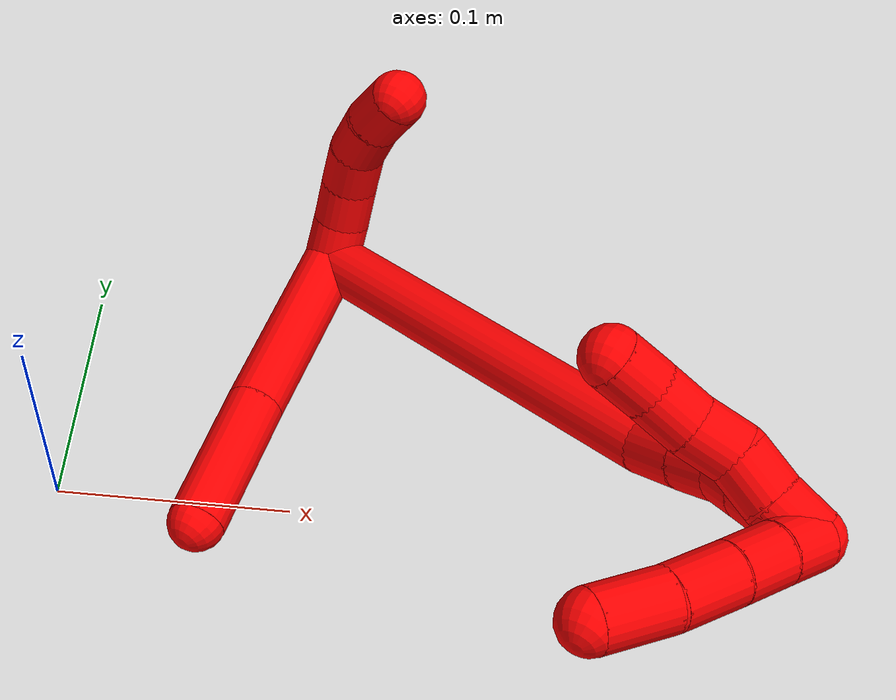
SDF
<sdf version="1.7">
 <world name="default">
  <model name="photoneo_s_sensor">
   <static>1</static>
   <pose>0 0 2 1.57079 1.57079 3.14159</pose>
   <link name="link">
    <inertial><mass>0.1</mass></inertial>
    <sensor name="sensor" type="depth">
     <update_rate>30</update_rate>
     <camera>
      <horizontal_fov>1.22</horizontal_fov>
      <image><width>1920</width><height>1200</height><format>B8G8R8</format></image>
      <clip><near>0.1</near><far>4</far></clip>
      <depth_camera><output>points</output></depth_camera>
     </camera>
     <plugin name="camera_plugin" filename="libgazebo_ros_depth_camera.so">
      <baseline>0.2</baseline>
      <alwaysOn>1</alwaysOn>
      <updateRate>0.0</updateRate>
      <cameraName>camera_ir</cameraName>
      <imageTopicName>/camera/color/image_raw</imageTopicName>
      <cameraInfoTopicName>/camera/color/camera_info</cameraInfoTopicName>
      <depthImageTopicName>/camera/depth/image_raw</depthImageTopicName>
      <depthImageCameraInfoTopicName>/camera/depth/camera_info</depthImageCameraInfoTopicName>
      <pointCloudTopicName>/camera/depth/points</pointCloudTopicName>
      <frameName>fr_optical</frameName>
      <pointCloudCutoff>0.1</pointCloudCutoff>
      <pointCloudCutoffMax>2.0</pointCloudCutoffMax>
      <distortionK1>0</distortionK1>
      <distortionK2>0</distortionK2>
      <distortionK3>0</distortionK3>
      <distortionT1>0</distortionT1>
      <distortionT2>0</distortionT2>
      <CxPrime>0</CxPrime>
      <Cx>0</Cx>
      <Cy>0</Cy>
      <focalLength>0</focalLength>
      <hackBaseline>0</hackBaseline>
     </plugin>
    </sensor>
   </link>
  </model>
  <model name="bin">
   <static>1</static>
   <link name="bottom">
    <collision name="collision-bottom">
     <pose>0 0 -0.01 0 -0 0</pose>
     <geometry><box><size>0.8 0.6 0.02</size></box></geometry>
     <surface>
      <friction><ode><mu>100</mu><mu2>100</mu2></ode></friction>
      <contact><collide_bitmask>65535</collide_bitmask></contact>
     </surface>
    </collision>
   </link>
   <link name="west_wall">
    <collision name="collision-west_wall">
     <pose>-0.41 0 0.1 0 -0 0</pose>
     <geometry><box><size>0.02 0.6 0.2</size></box></geometry>
     <surface>
      <friction><ode><mu>100</mu><mu2>100</mu2></ode></friction>
      <contact><collide_bitmask>65535</collide_bitmask></contact>
     </surface>
    </collision>
   </link>
   <link name="east_wall">
    <collision name="collision-east_wall">
     <pose>0.41 0 0.1 0 -0 0</pose>
     <geometry><box><size>0.02 0.6 0.2</size></box></geometry>
     <surface>
      <friction><ode><mu>100</mu><mu2>100</mu2></ode></friction>
      <contact><collide_bitmask>65535</collide_bitmask></contact>
     </surface>
    </collision>
   </link>
   <link name="south_wall">
    <collision name="collision-south_wall">
     <pose>0 -0.31 0.1 0 -0 0</pose>
     <geometry><box><size>0.8 0.02 0.2</size></box></geometry>
     <surface>
      <friction><ode><mu>100</mu><mu2>100</mu2></ode></friction>
      <contact><collide_bitmask>65535</collide_bitmask></contact>
     </surface>
    </collision>
   </link>
   <link name="north_wall">
    <collision name="collision-north_wall">
     <pose>0 0.31 0.1 0 -0 0</pose>
     <geometry><box><size>0.8 0.02 0.2</size></box></geometry>
     <surface>
      <friction><ode><mu>100</mu><mu2>100</mu2></ode></friction>
      <contact><collide_bitmask>65535</collide_bitmask></contact>
     </surface>
    </collision>
   </link>
  </model>
  <model name="2">
   <static>0</static>
   <link name="2">
    <collision name="collision-cylinder-e_1_2_8">
     <pose>0.002323 -0.005637 -0.042913 3.01099 0.053624 0.778376</pose>
     <geometry><cylinder><radius>0.0125</radius><length>0.086689</length></cylinder></geometry>
     <surface>
      <friction><ode><mu>1.16</mu><mu2>1.16</mu2><slip1>0</slip1><slip2>0</slip2></ode></friction>
      <contact><ode><kp>1e+06</kp><kd>1</kd><max_vel>0</max_vel><min_depth>0.001</min_depth></ode></contact>
     </surface>
    </collision>
    <visual name="visual-cylinder-e_1_2_8">
     <pose>0.002323 -0.005637 -0.042913 3.01099 0.053624 0.778376</pose>
     <geometry><cylinder><radius>0.0125</radius><length>0.086689</length></cylinder></geometry>
     <material><ambient>1 0 0 1</ambient></material>
    </visual>
    <collision name="collision-cylinder-e_2_8_6">
     <pose>0.0066 -0.016002 -0.117066 2.99138 0.061759 0.779049</pose>
     <geometry><cylinder><radius>0.0125</radius><length>0.063311</length></cylinder></geometry>
     <surface>
      <friction><ode><mu>1.16</mu><mu2>1.16</mu2><slip1>0</slip1><slip2>0</slip2></ode></friction>
      <contact><ode><kp>1e+06</kp><kd>1</kd><max_vel>0</max_vel><min_depth>0.001</min_depth></ode></contact>
     </surface>
    </collision>
    <visual name="visual-cylinder-e_2_8_6">
     <pose>0.0066 -0.016002 -0.117066 2.99138 0.061759 0.779049</pose>
     <geometry><cylinder><radius>0.0125</radius><length>0.063311</length></cylinder></geometry>
     <material><ambient>1 0 0 1</ambient></material>
    </visual>
    <collision name="collision-cylinder-e_1_2_9">
     <pose>-0.007569 -0.003587 0.005464 0.580896 -0.858487 -0.271929</pose>
     <geometry><cylinder><radius>0.0125</radius><length>0.02</length></cylinder></geometry>
     <surface>
      <friction><ode><mu>1.16</mu><mu2>1.16</mu2><slip1>0</slip1><slip2>0</slip2></ode></friction>
      <contact><ode><kp>1e+06</kp><kd>1</kd><max_vel>0</max_vel><min_depth>0.001</min_depth></ode></contact>
     </surface>
    </collision>
    <visual name="visual-cylinder-e_1_2_9">
     <pose>-0.007569 -0.003587 0.005464 0.580896 -0.858487 -0.271929</pose>
     <geometry><cylinder><radius>0.0125</radius><length>0.02</length></cylinder></geometry>
     <material><ambient>1 0 0 1</ambient></material>
    </visual>
    <collision name="collision-cylinder-e_2_9_10">
     <pose>-0.023281 -0.01168 0.014585 0.889102 -0.951596 -0.481394</pose>
     <geometry><cylinder><radius>0.0125</radius><length>0.02</length></cylinder></geometry>
     <surface>
      <friction><ode><mu>1.16</mu><mu2>1.16</mu2><slip1>0</slip1><slip2>0</slip2></ode></friction>
      <contact><ode><kp>1e+06</kp><kd>1</kd><max_vel>0</max_vel><min_depth>0.001</min_depth></ode></contact>
     </surface>
    </collision>
    <visual name="visual-cylinder-e_2_9_10">
     <pose>-0.023281 -0.01168 0.014585 0.889102 -0.951596 -0.481394</pose>
     <geometry><cylinder><radius>0.0125</radius><length>0.02</length></cylinder></geometry>
     <material><ambient>1 0 0 1</ambient></material>
    </visual>
    <collision name="collision-cylinder-e_3_10_11">
     <pose>-0.039526 -0.021614 0.020454 1.18366 -0.944588 -0.661571</pose>
     <geometry><cylinder><radius>0.0125</radius><length>0.02</length></cylinder></geometry>
     <surface>
      <friction><ode><mu>1.16</mu><mu2>1.16</mu2><slip1>0</slip1><slip2>0</slip2></ode></friction>
      <contact><ode><kp>1e+06</kp><kd>1</kd><max_vel>0</max_vel><min_depth>0.001</min_depth></ode></contact>
     </surface>
    </collision>
    <visual name="visual-cylinder-e_3_10_11">
     <pose>-0.039526 -0.021614 0.020454 1.18366 -0.944588 -0.661571</pose>
     <geometry><cylinder><radius>0.0125</radius><length>0.02</length></cylinder></geometry>
     <material><ambient>1 0 0 1</ambient></material>
    </visual>
    <collision name="collision-cylinder-e_4_11_12">
     <pose>-0.054323 -0.034342 0.024043 1.38449 -0.733364 -0.616544</pose>
     <geometry><cylinder><radius>0.0125</radius><length>0.02</length></cylinder></geometry>
     <surface>
      <friction><ode><mu>1.16</mu><mu2>1.16</mu2><slip1>0</slip1><slip2>0</slip2></ode></friction>
      <contact><ode><kp>1e+06</kp><kd>1</kd><max_vel>0</max_vel><min_depth>0.001</min_depth></ode></contact>
     </surface>
    </collision>
    <visual name="visual-cylinder-e_4_11_12">
     <pose>-0.054323 -0.034342 0.024043 1.38449 -0.733364 -0.616544</pose>
     <geometry><cylinder><radius>0.0125</radius><length>0.02</length></cylinder></geometry>
     <material><ambient>1 0 0 1</ambient></material>
    </visual>
    <collision name="collision-cylinder-e_5_12_5">
     <pose>-0.066207 -0.049999 0.027215 1.35907 -0.54572 -0.444686</pose>
     <geometry><cylinder><radius>0.0125</radius><length>0.02</length></cylinder></geometry>
     <surface>
      <friction><ode><mu>1.16</mu><mu2>1.16</mu2><slip1>0</slip1><slip2>0</slip2></ode></friction>
      <contact><ode><kp>1e+06</kp><kd>1</kd><max_vel>0</max_vel><min_depth>0.001</min_depth></ode></contact>
     </surface>
    </collision>
    <visual name="visual-cylinder-e_5_12_5">
     <pose>-0.066207 -0.049999 0.027215 1.35907 -0.54572 -0.444686</pose>
     <geometry><cylinder><radius>0.0125</radius><length>0.02</length></cylinder></geometry>
     <material><ambient>1 0 0 1</ambient></material>
    </visual>
    <collision name="collision-cylinder-e_1_2_13">
     <pose>0.020305 -0.089548 -0.025084 1.84392 0.214969 0.282661</pose>
     <geometry><cylinder><radius>0.0125</radius><length>0.190371</length></cylinder></geometry>
     <surface>
      <friction><ode><mu>1.16</mu><mu2>1.16</mu2><slip1>0</slip1><slip2>0</slip2></ode></friction>
      <contact><ode><kp>1e+06</kp><kd>1</kd><max_vel>0</max_vel><min_depth>0.001</min_depth></ode></contact>
     </surface>
    </collision>
    <visual name="visual-cylinder-e_1_2_13">
     <pose>0.020305 -0.089548 -0.025084 1.84392 0.214969 0.282661</pose>
     <geometry><cylinder><radius>0.0125</radius><length>0.190371</length></cylinder></geometry>
     <material><ambient>1 0 0 1</ambient></material>
    </visual>
    <collision name="collision-cylinder-e_2_13_14">
     <pose>0.039569 -0.19111 -0.053585 1.84789 -0.083117 -0.110004</pose>
     <geometry><cylinder><radius>0.0125</radius><length>0.025068</length></cylinder></geometry>
     <surface>
      <friction><ode><mu>1.16</mu><mu2>1.16</mu2><slip1>0</slip1><slip2>0</slip2></ode></friction>
      <contact><ode><kp>1e+06</kp><kd>1</kd><max_vel>0</max_vel><min_depth>0.001</min_depth></ode></contact>
     </surface>
    </collision>
    <visual name="visual-cylinder-e_2_13_14">
     <pose>0.039569 -0.19111 -0.053585 1.84789 -0.083117 -0.110004</pose>
     <geometry><cylinder><radius>0.0125</radius><length>0.025068</length></cylinder></geometry>
     <material><ambient>1 0 0 1</ambient></material>
    </visual>
    <collision name="collision-cylinder-e_3_14_15">
     <pose>0.037742 -0.213318 -0.059432 1.80481 -0.074906 -0.094834</pose>
     <geometry><cylinder><radius>0.0125</radius><length>0.021017</length></cylinder></geometry>
     <surface>
      <friction><ode><mu>1.16</mu><mu2>1.16</mu2><slip1>0</slip1><slip2>0</slip2></ode></friction>
      <contact><ode><kp>1e+06</kp><kd>1</kd><max_vel>0</max_vel><min_depth>0.001</min_depth></ode></contact>
     </surface>
    </collision>
    <visual name="visual-cylinder-e_3_14_15">
     <pose>0.037742 -0.213318 -0.059432 1.80481 -0.074906 -0.094834</pose>
     <geometry><cylinder><radius>0.0125</radius><length>0.021017</length></cylinder></geometry>
     <material><ambient>1 0 0 1</ambient></material>
    </visual>
    <collision name="collision-cylinder-e_4_15_16">
     <pose>0.035256 -0.232335 -0.066758 2.07736 -0.166848 -0.282159</pose>
     <geometry><cylinder><radius>0.0125</radius><length>0.020465</length></cylinder></geometry>
     <surface>
      <friction><ode><mu>1.16</mu><mu2>1.16</mu2><slip1>0</slip1><slip2>0</slip2></ode></friction>
      <contact><ode><kp>1e+06</kp><kd>1</kd><max_vel>0</max_vel><min_depth>0.001</min_depth></ode></contact>
     </surface>
    </collision>
    <visual name="visual-cylinder-e_4_15_16">
     <pose>0.035256 -0.232335 -0.066758 2.07736 -0.166848 -0.282159</pose>
     <geometry><cylinder><radius>0.0125</radius><length>0.020465</length></cylinder></geometry>
     <material><ambient>1 0 0 1</ambient></material>
    </visual>
    <collision name="collision-cylinder-e_5_16_17">
     <pose>0.032134 -0.249922 -0.076551 2.08042 -0.14074 -0.239133</pose>
     <geometry><cylinder><radius>0.0125</radius><length>0.02028</length></cylinder></geometry>
     <surface>
      <friction><ode><mu>1.16</mu><mu2>1.16</mu2><slip1>0</slip1><slip2>0</slip2></ode></friction>
      <contact><ode><kp>1e+06</kp><kd>1</kd><max_vel>0</max_vel><min_depth>0.001</min_depth></ode></contact>
     </surface>
    </collision>
    <visual name="visual-cylinder-e_5_16_17">
     <pose>0.032134 -0.249922 -0.076551 2.08042 -0.14074 -0.239133</pose>
     <geometry><cylinder><radius>0.0125</radius><length>0.02028</length></cylinder></geometry>
     <material><ambient>1 0 0 1</ambient></material>
    </visual>
    <collision name="collision-cylinder-e_6_17_1">
     <pose>0.029121 -0.268382 -0.087228 2.10823 -0.140055 -0.245664</pose>
     <geometry><cylinder><radius>0.0125</radius><length>0.022798</length></cylinder></geometry>
     <surface>
      <friction><ode><mu>1.16</mu><mu2>1.16</mu2><slip1>0</slip1><slip2>0</slip2></ode></friction>
      <contact><ode><kp>1e+06</kp><kd>1</kd><max_vel>0</max_vel><min_depth>0.001</min_depth></ode></contact>
     </surface>
    </collision>
    <visual name="visual-cylinder-e_6_17_1">
     <pose>0.029121 -0.268382 -0.087228 2.10823 -0.140055 -0.245664</pose>
     <geometry><cylinder><radius>0.0125</radius><length>0.022798</length></cylinder></geometry>
     <material><ambient>1 0 0 1</ambient></material>
    </visual>
    <collision name="collision-cylinder-e_1_1_18">
     <pose>0.020195 -0.271524 -0.091204 -1.30252 -0.823402 0.64257</pose>
     <geometry><cylinder><radius>0.0125</radius><length>0.02</length></cylinder></geometry>
     <surface>
      <friction><ode><mu>1.16</mu><mu2>1.16</mu2><slip1>0</slip1><slip2>0</slip2></ode></friction>
      <contact><ode><kp>1e+06</kp><kd>1</kd><max_vel>0</max_vel><min_depth>0.001</min_depth></ode></contact>
     </surface>
    </collision>
    <visual name="visual-cylinder-e_1_1_18">
     <pose>0.020195 -0.271524 -0.091204 -1.30252 -0.823402 0.64257</pose>
     <geometry><cylinder><radius>0.0125</radius><length>0.02</length></cylinder></geometry>
     <material><ambient>1 0 0 1</ambient></material>
    </visual>
    <collision name="collision-cylinder-e_2_18_19">
     <pose>0.005314 -0.259129 -0.086411 -1.09749 -0.85502 0.543327</pose>
     <geometry><cylinder><radius>0.0125</radius><length>0.02</length></cylinder></geometry>
     <surface>
      <friction><ode><mu>1.16</mu><mu2>1.16</mu2><slip1>0</slip1><slip2>0</slip2></ode></friction>
      <contact><ode><kp>1e+06</kp><kd>1</kd><max_vel>0</max_vel><min_depth>0.001</min_depth></ode></contact>
     </surface>
    </collision>
    <visual name="visual-cylinder-e_2_18_19">
     <pose>0.005314 -0.259129 -0.086411 -1.09749 -0.85502 0.543327</pose>
     <geometry><cylinder><radius>0.0125</radius><length>0.02</length></cylinder></geometry>
     <material><ambient>1 0 0 1</ambient></material>
    </visual>
    <collision name="collision-cylinder-e_3_19_20">
     <pose>-0.009496 -0.246423 -0.083717 -1.61398 -0.813103 0.844945</pose>
     <geometry><cylinder><radius>0.0125</radius><length>0.02</length></cylinder></geometry>
     <surface>
      <friction><ode><mu>1.16</mu><mu2>1.16</mu2><slip1>0</slip1><slip2>0</slip2></ode></friction>
      <contact><ode><kp>1e+06</kp><kd>1</kd><max_vel>0</max_vel><min_depth>0.001</min_depth></ode></contact>
     </surface>
    </collision>
    <visual name="visual-cylinder-e_3_19_20">
     <pose>-0.009496 -0.246423 -0.083717 -1.61398 -0.813103 0.844945</pose>
     <geometry><cylinder><radius>0.0125</radius><length>0.02</length></cylinder></geometry>
     <material><ambient>1 0 0 1</ambient></material>
    </visual>
    <collision name="collision-cylinder-e_4_20_21">
     <pose>-0.025347 -0.234434 -0.084191 -1.60537 -1.03264 1.06259</pose>
     <geometry><cylinder><radius>0.0125</radius><length>0.02</length></cylinder></geometry>
     <surface>
      <friction><ode><mu>1.16</mu><mu2>1.16</mu2><slip1>0</slip1><slip2>0</slip2></ode></friction>
      <contact><ode><kp>1e+06</kp><kd>1</kd><max_vel>0</max_vel><min_depth>0.001</min_depth></ode></contact>
     </surface>
    </collision>
    <visual name="visual-cylinder-e_4_20_21">
     <pose>-0.025347 -0.234434 -0.084191 -1.60537 -1.03264 1.06259</pose>
     <geometry><cylinder><radius>0.0125</radius><length>0.02</length></cylinder></geometry>
     <material><ambient>1 0 0 1</ambient></material>
    </visual>
    <collision name="collision-cylinder-e_5_21_4">
     <pose>-0.043026 -0.225349 -0.085642 -1.88198 -1.14146 1.44431</pose>
     <geometry><cylinder><radius>0.0125</radius><length>0.02</length></cylinder></geometry>
     <surface>
      <friction><ode><mu>1.16</mu><mu2>1.16</mu2><slip1>0</slip1><slip2>0</slip2></ode></friction>
      <contact><ode><kp>1e+06</kp><kd>1</kd><max_vel>0</max_vel><min_depth>0.001</min_depth></ode></contact>
     </surface>
    </collision>
    <visual name="visual-cylinder-e_5_21_4">
     <pose>-0.043026 -0.225349 -0.085642 -1.88198 -1.14146 1.44431</pose>
     <geometry><cylinder><radius>0.0125</radius><length>0.02</length></cylinder></geometry>
     <material><ambient>1 0 0 1</ambient></material>
    </visual>
    <collision name="collision-cylinder-e_1_1_22">
     <pose>0.022486 -0.276021 -0.1014 -2.90127 -0.528288 2.30182</pose>
     <geometry><cylinder><radius>0.0125</radius><length>0.020012</length></cylinder></geometry>
     <surface>
      <friction><ode><mu>1.16</mu><mu2>1.16</mu2><slip1>0</slip1><slip2>0</slip2></ode></friction>
      <contact><ode><kp>1e+06</kp><kd>1</kd><max_vel>0</max_vel><min_depth>0.001</min_depth></ode></contact>
     </surface>
    </collision>
    <visual name="visual-cylinder-e_1_1_22">
     <pose>0.022486 -0.276021 -0.1014 -2.90127 -0.528288 2.30182</pose>
     <geometry><cylinder><radius>0.0125</radius><length>0.020012</length></cylinder></geometry>
     <material><ambient>1 0 0 1</ambient></material>
    </visual>
    <collision name="collision-cylinder-e_2_22_23">
     <pose>0.012535 -0.270987 -0.119004 -2.8289 -0.469194 1.97548</pose>
     <geometry><cylinder><radius>0.0125</radius><length>0.021706</length></cylinder></geometry>
     <surface>
      <friction><ode><mu>1.16</mu><mu2>1.16</mu2><slip1>0</slip1><slip2>0</slip2></ode></friction>
      <contact><ode><kp>1e+06</kp><kd>1</kd><max_vel>0</max_vel><min_depth>0.001</min_depth></ode></contact>
     </surface>
    </collision>
    <visual name="visual-cylinder-e_2_22_23">
     <pose>0.012535 -0.270987 -0.119004 -2.8289 -0.469194 1.97548</pose>
     <geometry><cylinder><radius>0.0125</radius><length>0.021706</length></cylinder></geometry>
     <material><ambient>1 0 0 1</ambient></material>
    </visual>
    <collision name="collision-cylinder-e_3_23_24">
     <pose>0.001749 -0.263341 -0.139833 -2.75954 -0.438973 1.71317</pose>
     <geometry><cylinder><radius>0.0125</radius><length>0.027665</length></cylinder></geometry>
     <surface>
      <friction><ode><mu>1.16</mu><mu2>1.16</mu2><slip1>0</slip1><slip2>0</slip2></ode></friction>
      <contact><ode><kp>1e+06</kp><kd>1</kd><max_vel>0</max_vel><min_depth>0.001</min_depth></ode></contact>
     </surface>
    </collision>
    <visual name="visual-cylinder-e_3_23_24">
     <pose>0.001749 -0.263341 -0.139833 -2.75954 -0.438973 1.71317</pose>
     <geometry><cylinder><radius>0.0125</radius><length>0.027665</length></cylinder></geometry>
     <material><ambient>1 0 0 1</ambient></material>
    </visual>
    <collision name="collision-cylinder-e_4_24_3">
     <pose>-0.011042 -0.251838 -0.163278 -2.6176 -0.46844 1.45425</pose>
     <geometry><cylinder><radius>0.0125</radius><length>0.030617</length></cylinder></geometry>
     <surface>
      <friction><ode><mu>1.16</mu><mu2>1.16</mu2><slip1>0</slip1><slip2>0</slip2></ode></friction>
      <contact><ode><kp>1e+06</kp><kd>1</kd><max_vel>0</max_vel><min_depth>0.001</min_depth></ode></contact>
     </surface>
    </collision>
    <visual name="visual-cylinder-e_4_24_3">
     <pose>-0.011042 -0.251838 -0.163278 -2.6176 -0.46844 1.45425</pose>
     <geometry><cylinder><radius>0.0125</radius><length>0.030617</length></cylinder></geometry>
     <material><ambient>1 0 0 1</ambient></material>
    </visual>
    <collision name="collision-sphere-3">
     <pose>-0.017954 -0.245004 -0.175104 0 -0 0</pose>
     <geometry><sphere><radius>0.0125</radius></sphere></geometry>
     <surface>
      <friction><ode><mu>1.16</mu><mu2>1.16</mu2><slip1>0</slip1><slip2>0</slip2></ode></friction>
      <contact><ode><kp>1e+06</kp><kd>1</kd><max_vel>0</max_vel><min_depth>0.001</min_depth></ode></contact>
     </surface>
    </collision>
    <visual name="visual-sphere-3">
     <pose>-0.017954 -0.245004 -0.175104 0 -0 0</pose>
     <geometry><sphere><radius>0.0125</radius></sphere></geometry>
     <material><ambient>1 0 0 1</ambient></material>
    </visual>
    <collision name="collision-sphere-24">
     <pose>-0.00413 -0.258673 -0.151451 0 -0 0</pose>
     <geometry><sphere><radius>0.0125</radius></sphere></geometry>
     <surface>
      <friction><ode><mu>1.16</mu><mu2>1.16</mu2><slip1>0</slip1><slip2>0</slip2></ode></friction>
      <contact><ode><kp>1e+06</kp><kd>1</kd><max_vel>0</max_vel><min_depth>0.001</min_depth></ode></contact>
     </surface>
    </collision>
    <visual name="visual-sphere-24">
     <pose>-0.00413 -0.258673 -0.151451 0 -0 0</pose>
     <geometry><sphere><radius>0.0125</radius></sphere></geometry>
     <material><ambient>1 0 0 1</ambient></material>
    </visual>
    <collision name="collision-sphere-23">
     <pose>0.007628 -0.268009 -0.128214 0 -0 0</pose>
     <geometry><sphere><radius>0.0125</radius></sphere></geometry>
     <surface>
      <friction><ode><mu>1.16</mu><mu2>1.16</mu2><slip1>0</slip1><slip2>0</slip2></ode></friction>
      <contact><ode><kp>1e+06</kp><kd>1</kd><max_vel>0</max_vel><min_depth>0.001</min_depth></ode></contact>
     </surface>
    </collision>
    <visual name="visual-sphere-23">
     <pose>0.007628 -0.268009 -0.128214 0 -0 0</pose>
     <geometry><sphere><radius>0.0125</radius></sphere></geometry>
     <material><ambient>1 0 0 1</ambient></material>
    </visual>
    <collision name="collision-sphere-22">
     <pose>0.017442 -0.273964 -0.109793 0 -0 0</pose>
     <geometry><sphere><radius>0.0125</radius></sphere></geometry>
     <surface>
      <friction><ode><mu>1.16</mu><mu2>1.16</mu2><slip1>0</slip1><slip2>0</slip2></ode></friction>
      <contact><ode><kp>1e+06</kp><kd>1</kd><max_vel>0</max_vel><min_depth>0.001</min_depth></ode></contact>
     </surface>
    </collision>
    <visual name="visual-sphere-22">
     <pose>0.017442 -0.273964 -0.109793 0 -0 0</pose>
     <geometry><sphere><radius>0.0125</radius></sphere></geometry>
     <material><ambient>1 0 0 1</ambient></material>
    </visual>
    <collision name="collision-sphere-4">
     <pose>-0.052118 -0.221386 -0.086917 0 -0 0</pose>
     <geometry><sphere><radius>0.0125</radius></sphere></geometry>
     <surface>
      <friction><ode><mu>1.16</mu><mu2>1.16</mu2><slip1>0</slip1><slip2>0</slip2></ode></friction>
      <contact><ode><kp>1e+06</kp><kd>1</kd><max_vel>0</max_vel><min_depth>0.001</min_depth></ode></contact>
     </surface>
    </collision>
    <visual name="visual-sphere-4">
     <pose>-0.052118 -0.221386 -0.086917 0 -0 0</pose>
     <geometry><sphere><radius>0.0125</radius></sphere></geometry>
     <material><ambient>1 0 0 1</ambient></material>
    </visual>
    <collision name="collision-sphere-21">
     <pose>-0.033933 -0.229312 -0.084368 0 -0 0</pose>
     <geometry><sphere><radius>0.0125</radius></sphere></geometry>
     <surface>
      <friction><ode><mu>1.16</mu><mu2>1.16</mu2><slip1>0</slip1><slip2>0</slip2></ode></friction>
      <contact><ode><kp>1e+06</kp><kd>1</kd><max_vel>0</max_vel><min_depth>0.001</min_depth></ode></contact>
     </surface>
    </collision>
    <visual name="visual-sphere-21">
     <pose>-0.033933 -0.229312 -0.084368 0 -0 0</pose>
     <geometry><sphere><radius>0.0125</radius></sphere></geometry>
     <material><ambient>1 0 0 1</ambient></material>
    </visual>
    <collision name="collision-sphere-20">
     <pose>-0.01676 -0.239557 -0.084013 0 -0 0</pose>
     <geometry><sphere><radius>0.0125</radius></sphere></geometry>
     <surface>
      <friction><ode><mu>1.16</mu><mu2>1.16</mu2><slip1>0</slip1><slip2>0</slip2></ode></friction>
      <contact><ode><kp>1e+06</kp><kd>1</kd><max_vel>0</max_vel><min_depth>0.001</min_depth></ode></contact>
     </surface>
    </collision>
    <visual name="visual-sphere-20">
     <pose>-0.01676 -0.239557 -0.084013 0 -0 0</pose>
     <geometry><sphere><radius>0.0125</radius></sphere></geometry>
     <material><ambient>1 0 0 1</ambient></material>
    </visual>
    <collision name="collision-sphere-11">
     <pose>-0.047629 -0.027041 0.022667 0 -0 0</pose>
     <geometry><sphere><radius>0.0125</radius></sphere></geometry>
     <surface>
      <friction><ode><mu>1.16</mu><mu2>1.16</mu2><slip1>0</slip1><slip2>0</slip2></ode></friction>
      <contact><ode><kp>1e+06</kp><kd>1</kd><max_vel>0</max_vel><min_depth>0.001</min_depth></ode></contact>
     </surface>
    </collision>
    <visual name="visual-sphere-11">
     <pose>-0.047629 -0.027041 0.022667 0 -0 0</pose>
     <geometry><sphere><radius>0.0125</radius></sphere></geometry>
     <material><ambient>1 0 0 1</ambient></material>
    </visual>
    <collision name="collision-sphere-10">
     <pose>-0.031424 -0.016187 0.018242 0 -0 0</pose>
     <geometry><sphere><radius>0.0125</radius></sphere></geometry>
     <surface>
      <friction><ode><mu>1.16</mu><mu2>1.16</mu2><slip1>0</slip1><slip2>0</slip2></ode></friction>
      <contact><ode><kp>1e+06</kp><kd>1</kd><max_vel>0</max_vel><min_depth>0.001</min_depth></ode></contact>
     </surface>
    </collision>
    <visual name="visual-sphere-10">
     <pose>-0.031424 -0.016187 0.018242 0 -0 0</pose>
     <geometry><sphere><radius>0.0125</radius></sphere></geometry>
     <material><ambient>1 0 0 1</ambient></material>
    </visual>
    <collision name="collision-sphere-6">
     <pose>0.008554 -0.02073 -0.148306 0 -0 0</pose>
     <geometry><sphere><radius>0.0125</radius></sphere></geometry>
     <surface>
      <friction><ode><mu>1.16</mu><mu2>1.16</mu2><slip1>0</slip1><slip2>0</slip2></ode></friction>
      <contact><ode><kp>1e+06</kp><kd>1</kd><max_vel>0</max_vel><min_depth>0.001</min_depth></ode></contact>
     </surface>
    </collision>
    <visual name="visual-sphere-6">
     <pose>0.008554 -0.02073 -0.148306 0 -0 0</pose>
     <geometry><sphere><radius>0.0125</radius></sphere></geometry>
     <material><ambient>1 0 0 1</ambient></material>
    </visual>
    <collision name="collision-sphere-9">
     <pose>-0.015137 -0.007173 0.010928 0 -0 0</pose>
     <geometry><sphere><radius>0.0125</radius></sphere></geometry>
     <surface>
      <friction><ode><mu>1.16</mu><mu2>1.16</mu2><slip1>0</slip1><slip2>0</slip2></ode></friction>
      <contact><ode><kp>1e+06</kp><kd>1</kd><max_vel>0</max_vel><min_depth>0.001</min_depth></ode></contact>
     </surface>
    </collision>
    <visual name="visual-sphere-9">
     <pose>-0.015137 -0.007173 0.010928 0 -0 0</pose>
     <geometry><sphere><radius>0.0125</radius></sphere></geometry>
     <material><ambient>1 0 0 1</ambient></material>
    </visual>
    <collision name="collision-sphere-2">
     <geometry><sphere><radius>0.0125</radius></sphere></geometry>
     <surface>
      <friction><ode><mu>1.16</mu><mu2>1.16</mu2><slip1>0</slip1><slip2>0</slip2></ode></friction>
      <contact><ode><kp>1e+06</kp><kd>1</kd><max_vel>0</max_vel><min_depth>0.001</min_depth></ode></contact>
     </surface>
    </collision>
    <visual name="visual-sphere-2">
     <geometry><sphere><radius>0.0125</radius></sphere></geometry>
     <material><ambient>1 0 0 1</ambient></material>
    </visual>
    <collision name="collision-sphere-19">
     <pose>-0.002232 -0.253289 -0.08342 0 -0 0</pose>
     <geometry><sphere><radius>0.0125</radius></sphere></geometry>
     <surface>
      <friction><ode><mu>1.16</mu><mu2>1.16</mu2><slip1>0</slip1><slip2>0</slip2></ode></friction>
      <contact><ode><kp>1e+06</kp><kd>1</kd><max_vel>0</max_vel><min_depth>0.001</min_depth></ode></contact>
     </surface>
    </collision>
    <visual name="visual-sphere-19">
     <pose>-0.002232 -0.253289 -0.08342 0 -0 0</pose>
     <geometry><sphere><radius>0.0125</radius></sphere></geometry>
     <material><ambient>1 0 0 1</ambient></material>
    </visual>
    <collision name="collision-sphere-8">
     <pose>0.004646 -0.011273 -0.085827 0 -0 0</pose>
     <geometry><sphere><radius>0.0125</radius></sphere></geometry>
     <surface>
      <friction><ode><mu>1.16</mu><mu2>1.16</mu2><slip1>0</slip1><slip2>0</slip2></ode></friction>
      <contact><ode><kp>1e+06</kp><kd>1</kd><max_vel>0</max_vel><min_depth>0.001</min_depth></ode></contact>
     </surface>
    </collision>
    <visual name="visual-sphere-8">
     <pose>0.004646 -0.011273 -0.085827 0 -0 0</pose>
     <geometry><sphere><radius>0.0125</radius></sphere></geometry>
     <material><ambient>1 0 0 1</ambient></material>
    </visual>
    <collision name="collision-sphere-12">
     <pose>-0.061017 -0.041642 0.025419 0 -0 0</pose>
     <geometry><sphere><radius>0.0125</radius></sphere></geometry>
     <surface>
      <friction><ode><mu>1.16</mu><mu2>1.16</mu2><slip1>0</slip1><slip2>0</slip2></ode></friction>
      <contact><ode><kp>1e+06</kp><kd>1</kd><max_vel>0</max_vel><min_depth>0.001</min_depth></ode></contact>
     </surface>
    </collision>
    <visual name="visual-sphere-12">
     <pose>-0.061017 -0.041642 0.025419 0 -0 0</pose>
     <geometry><sphere><radius>0.0125</radius></sphere></geometry>
     <material><ambient>1 0 0 1</ambient></material>
    </visual>
    <collision name="collision-sphere-5">
     <pose>-0.071397 -0.058356 0.029012 0 -0 0</pose>
     <geometry><sphere><radius>0.0125</radius></sphere></geometry>
     <surface>
      <friction><ode><mu>1.16</mu><mu2>1.16</mu2><slip1>0</slip1><slip2>0</slip2></ode></friction>
      <contact><ode><kp>1e+06</kp><kd>1</kd><max_vel>0</max_vel><min_depth>0.001</min_depth></ode></contact>
     </surface>
    </collision>
    <visual name="visual-sphere-5">
     <pose>-0.071397 -0.058356 0.029012 0 -0 0</pose>
     <geometry><sphere><radius>0.0125</radius></sphere></geometry>
     <material><ambient>1 0 0 1</ambient></material>
    </visual>
    <collision name="collision-sphere-13">
     <pose>0.04061 -0.179096 -0.050168 0 -0 0</pose>
     <geometry><sphere><radius>0.0125</radius></sphere></geometry>
     <surface>
      <friction><ode><mu>1.16</mu><mu2>1.16</mu2><slip1>0</slip1><slip2>0</slip2></ode></friction>
      <contact><ode><kp>1e+06</kp><kd>1</kd><max_vel>0</max_vel><min_depth>0.001</min_depth></ode></contact>
     </surface>
    </collision>
    <visual name="visual-sphere-13">
     <pose>0.04061 -0.179096 -0.050168 0 -0 0</pose>
     <geometry><sphere><radius>0.0125</radius></sphere></geometry>
     <material><ambient>1 0 0 1</ambient></material>
    </visual>
    <collision name="collision-sphere-14">
     <pose>0.038528 -0.203125 -0.057003 0 -0 0</pose>
     <geometry><sphere><radius>0.0125</radius></sphere></geometry>
     <surface>
      <friction><ode><mu>1.16</mu><mu2>1.16</mu2><slip1>0</slip1><slip2>0</slip2></ode></friction>
      <contact><ode><kp>1e+06</kp><kd>1</kd><max_vel>0</max_vel><min_depth>0.001</min_depth></ode></contact>
     </surface>
    </collision>
    <visual name="visual-sphere-14">
     <pose>0.038528 -0.203125 -0.057003 0 -0 0</pose>
     <geometry><sphere><radius>0.0125</radius></sphere></geometry>
     <material><ambient>1 0 0 1</ambient></material>
    </visual>
    <collision name="collision-sphere-15">
     <pose>0.036955 -0.223512 -0.061862 0 -0 0</pose>
     <geometry><sphere><radius>0.0125</radius></sphere></geometry>
     <surface>
      <friction><ode><mu>1.16</mu><mu2>1.16</mu2><slip1>0</slip1><slip2>0</slip2></ode></friction>
      <contact><ode><kp>1e+06</kp><kd>1</kd><max_vel>0</max_vel><min_depth>0.001</min_depth></ode></contact>
     </surface>
    </collision>
    <visual name="visual-sphere-15">
     <pose>0.036955 -0.223512 -0.061862 0 -0 0</pose>
     <geometry><sphere><radius>0.0125</radius></sphere></geometry>
     <material><ambient>1 0 0 1</ambient></material>
    </visual>
    <collision name="collision-sphere-16">
     <pose>0.033557 -0.241158 -0.071654 0 -0 0</pose>
     <geometry><sphere><radius>0.0125</radius></sphere></geometry>
     <surface>
      <friction><ode><mu>1.16</mu><mu2>1.16</mu2><slip1>0</slip1><slip2>0</slip2></ode></friction>
      <contact><ode><kp>1e+06</kp><kd>1</kd><max_vel>0</max_vel><min_depth>0.001</min_depth></ode></contact>
     </surface>
    </collision>
    <visual name="visual-sphere-16">
     <pose>0.033557 -0.241158 -0.071654 0 -0 0</pose>
     <geometry><sphere><radius>0.0125</radius></sphere></geometry>
     <material><ambient>1 0 0 1</ambient></material>
    </visual>
    <collision name="collision-sphere-17">
     <pose>0.030712 -0.258686 -0.081449 0 -0 0</pose>
     <geometry><sphere><radius>0.0125</radius></sphere></geometry>
     <surface>
      <friction><ode><mu>1.16</mu><mu2>1.16</mu2><slip1>0</slip1><slip2>0</slip2></ode></friction>
      <contact><ode><kp>1e+06</kp><kd>1</kd><max_vel>0</max_vel><min_depth>0.001</min_depth></ode></contact>
     </surface>
    </collision>
    <visual name="visual-sphere-17">
     <pose>0.030712 -0.258686 -0.081449 0 -0 0</pose>
     <geometry><sphere><radius>0.0125</radius></sphere></geometry>
     <material><ambient>1 0 0 1</ambient></material>
    </visual>
    <collision name="collision-sphere-1">
     <pose>0.027529 -0.278078 -0.093006 0 -0 0</pose>
     <geometry><sphere><radius>0.0125</radius></sphere></geometry>
     <surface>
      <friction><ode><mu>1.16</mu><mu2>1.16</mu2><slip1>0</slip1><slip2>0</slip2></ode></friction>
      <contact><ode><kp>1e+06</kp><kd>1</kd><max_vel>0</max_vel><min_depth>0.001</min_depth></ode></contact>
     </surface>
    </collision>
    <visual name="visual-sphere-1">
     <pose>0.027529 -0.278078 -0.093006 0 -0 0</pose>
     <geometry><sphere><radius>0.0125</radius></sphere></geometry>
     <material><ambient>1 0 0 1</ambient></material>
    </visual>
    <collision name="collision-sphere-18">
     <pose>0.01286 -0.26497 -0.089403 0 -0 0</pose>
     <geometry><sphere><radius>0.0125</radius></sphere></geometry>
     <surface>
      <friction><ode><mu>1.16</mu><mu2>1.16</mu2><slip1>0</slip1><slip2>0</slip2></ode></friction>
      <contact><ode><kp>1e+06</kp><kd>1</kd><max_vel>0</max_vel><min_depth>0.001</min_depth></ode></contact>
     </surface>
    </collision>
    <visual name="visual-sphere-18">
     <pose>0.01286 -0.26497 -0.089403 0 -0 0</pose>
     <geometry><sphere><radius>0.0125</radius></sphere></geometry>
     <material><ambient>1 0 0 1</ambient></material>
    </visual>
    <inertial>
     <pose>0.005165 -0.129771 -0.058233 0 -0 0</pose>
     <mass>0.75</mass>
     <inertia>
      <ixx>0.000829</ixx>
      <ixy>0</ixy>
      <ixz>0</ixz>
      <iyy>3.8e-05</iyy>
      <iyz>0</iyz>
      <izz>0.000429</izz>
     </inertia>
    </inertial>
   </link>
   <pose>0.102367 0.127759 0.011495 -1.57465 1.09153 -0.411646</pose>
  </model>
 </world>
</sdf>
